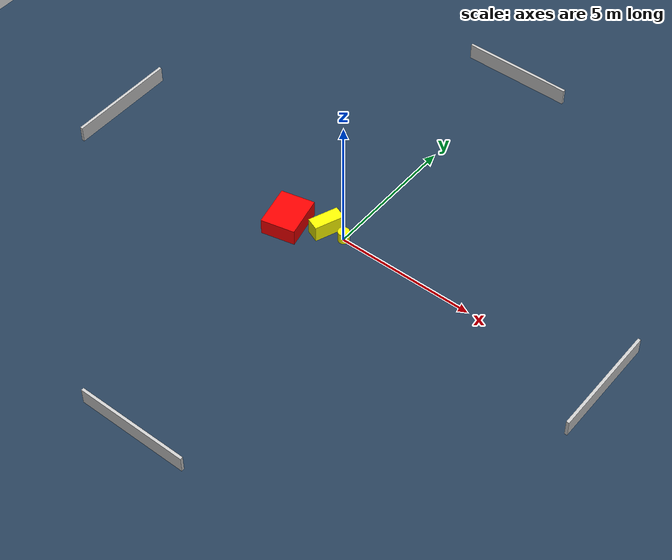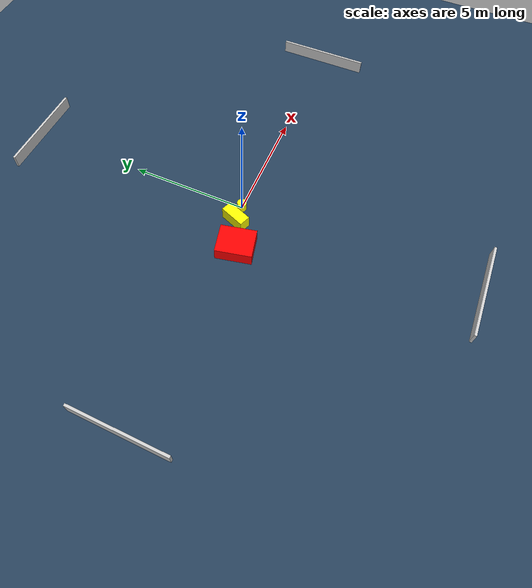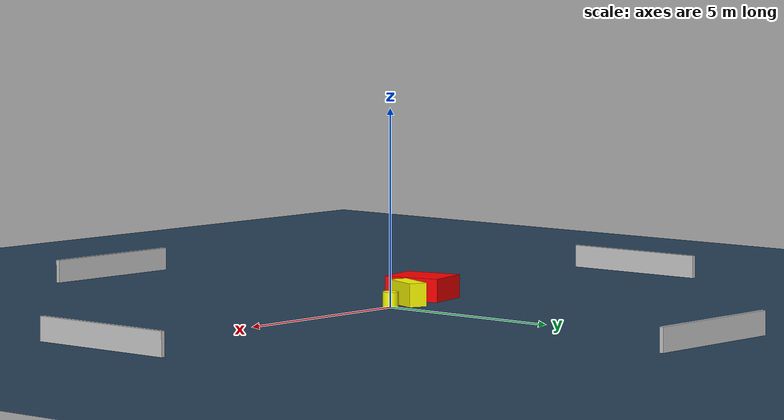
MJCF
<?xml version="1.0" ?>
<mujoco model="generated_environment">
  <option timestep="0.01" integrator="RK4" cone="elliptic"/>
  <default>
    <geom density="1"/>
  </default>
  <asset>
    <texture builtin="gradient" height="3072" name="skybox" rgb1="0.3 0.5 0.7" rgb2="0 0 0" type="skybox" width="512"/>
    <texture builtin="checker" height="300" name="groundplane" rgb1="0.2 0.3 0.4" rgb2="0.1 0.2 0.3" type="2d" width="300"/>
    <material name="groundplane" reflectance="0.2" texrepeat="5 5" texture="groundplane"/>
  </asset>
  <worldbody>
    <light dir="0 0 -1" directional="true" pos="0 0 1.5"/>
    <geom condim="3" friction="0.5 0.005 0.001" material="groundplane" name="floor" pos="0 0 0" size="0 0 0.05" type="plane"/>
    <body name="walls">
      <geom name="wall_1" condim="4" pos="-10.0 0.0 0.3" rgba="0.800000011920929 0.800000011920929 0.800000011920929 1.0" size="0.05 2.0 0.3" type="box"/>
      <geom name="wall_2" condim="4" pos="10.0 0.0 0.3" rgba="0.800000011920929 0.800000011920929 0.800000011920929 1.0" size="0.05 2.0 0.3" type="box"/>
      <geom name="wall_3" condim="4" pos="0.0 -10.0 0.3" rgba="0.800000011920929 0.800000011920929 0.800000011920929 1.0" size="2.0 0.05 0.3" type="box"/>
      <geom name="wall_4" condim="4" pos="0.0 10.0 0.3" rgba="0.800000011920929 0.800000011920929 0.800000011920929 1.0" size="2.0 0.05 0.3" type="box"/>
    </body>
    <body name="robot">
      <joint name="joint_x" type="slide" pos="0 0 0" axis="1 0 0"/>
      <joint name="joint_y" type="slide" pos="0 0 0" axis="0 1 0"/>
      <geom name="robot" type="cylinder" pos="0.0 0.0 0.2" size="0.2 0.2 0.0" mass="5.0" friction="1.0 0.005 0.0001" condim="4" rgba="1.0 1.0 0.0 1.0"/>
    </body>
    <body name="obstacle_1_movable">
      <geom name="obstacle_1_movable" condim="4" pos="-0.705171012557102 -0.03223665265808458 0.3" euler="0 0 158.7627512141665" friction="0.0 0.005 0.001" rgba="1.0 1.0 0.0 1.0" size="0.2403962828433227 0.5383235457927861 0.3" type="box" mass="0.1"/>
      <joint type="free"/>
    </body>
    <body name="obstacle_2_static">
      <geom name="obstacle_2_static" condim="4" pos="-1.8876551495199216 -0.5828172258468637 0.3" euler="0 0 12.721352174352365" friction="0.0 0.005 0.001" rgba="1.0 0.0 0.0 1.0" size="0.6101149714749436 0.7492842260846837 0.3" type="box"/>
    </body>
  </worldbody>
  <actuator>
    <motor name="actuator_x" joint="joint_x" gear="1" ctrlrange="-1 1"/>
    <motor name="actuator_y" joint="joint_y" gear="1" ctrlrange="-1 1"/>
  </actuator>
</mujoco>
